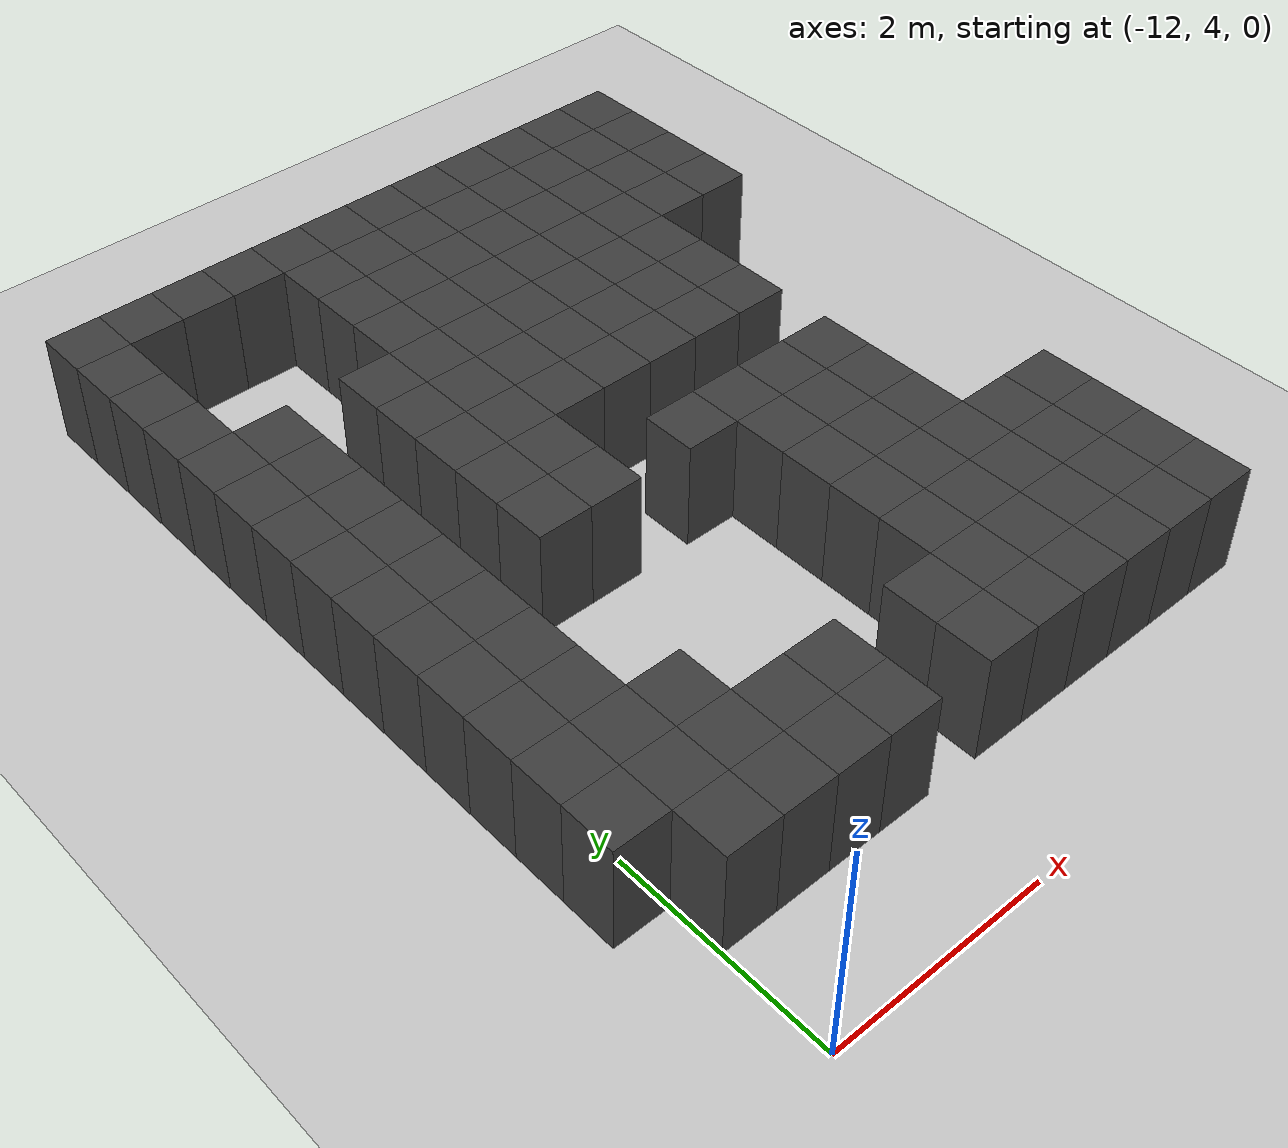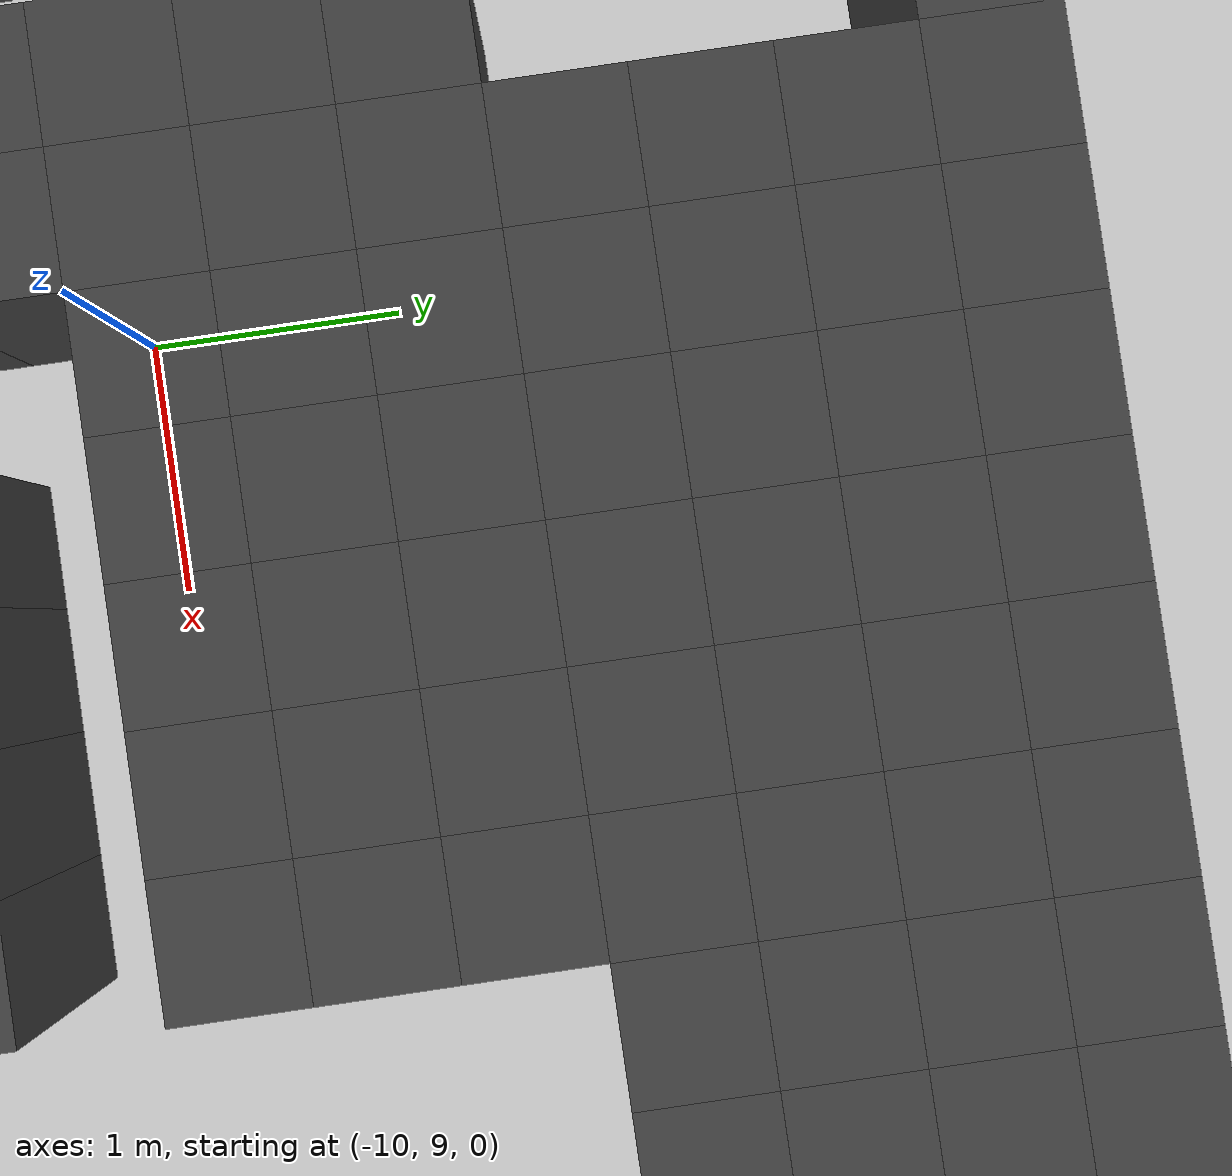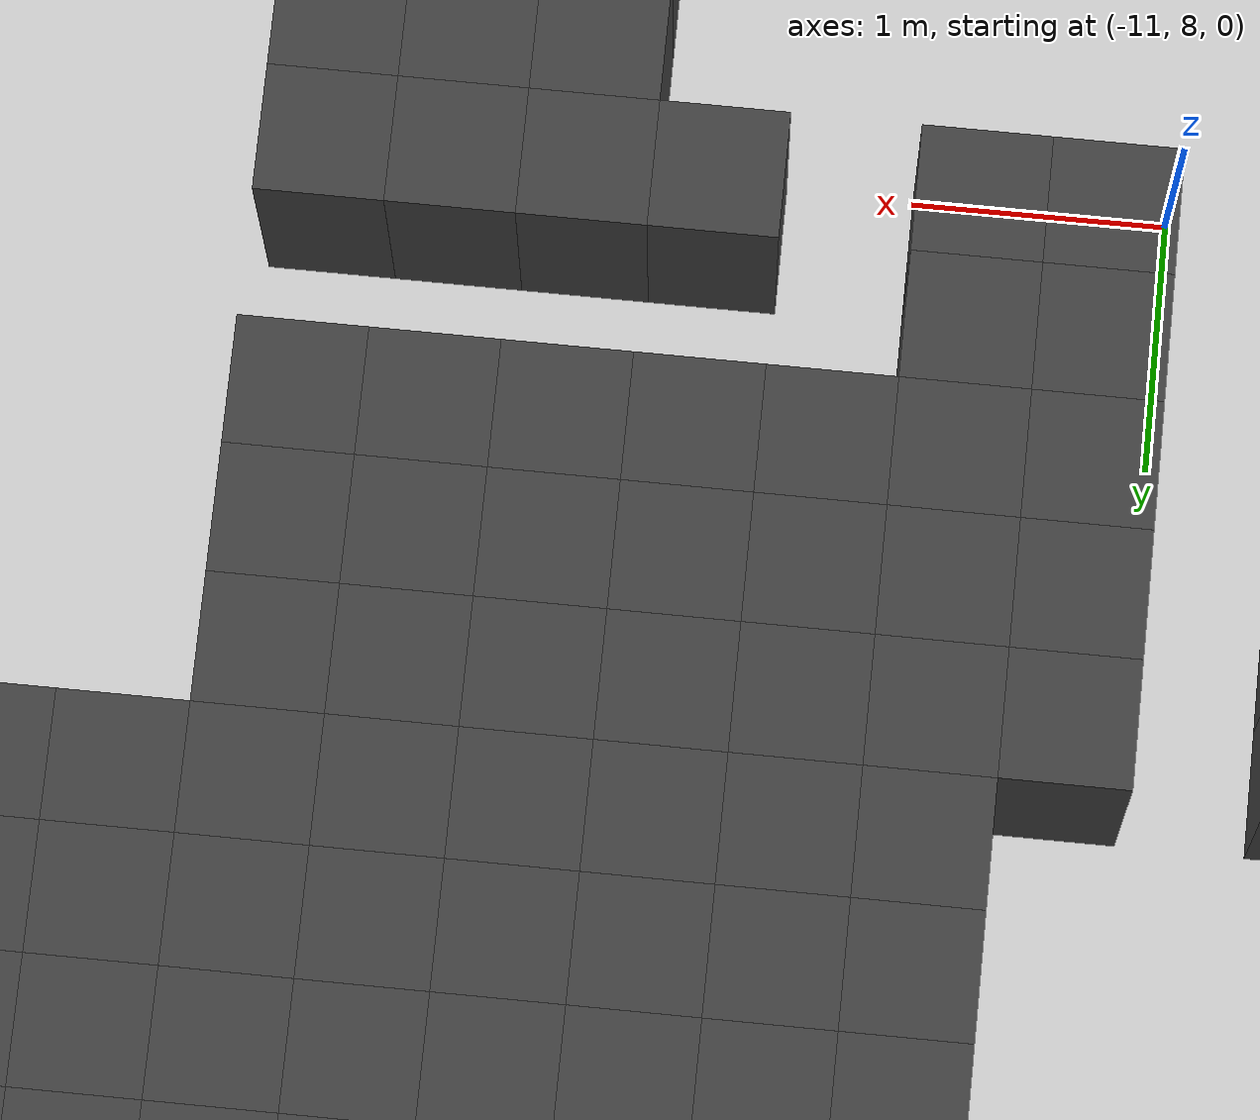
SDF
<sdf version="1.7">
 <world name="map_14802">
  <model name="ground_plane">
   <static>true</static>
   <link name="link">
    <collision name="collision">
     <geometry><plane><normal>0 0 1</normal><size>200 200</size></plane></geometry>
    </collision>
    <visual name="visual">
     <geometry><plane><normal>0 0 1</normal><size>200 200</size></plane></geometry>
     <material><ambient>0.8 0.8 0.8 1</ambient><diffuse>0.8 0.8 0.8 1</diffuse></material>
    </visual>
   </link>
  </model>
  <model name="maze_environment">
   <static>true</static>
   <link name="wall_0">
    <pose>-12.250 12.250 0.500 0 0 0</pose>
    <collision name="col"><geometry><box><size>0.5 0.5 1.0</size></box></geometry></collision>
    <visual name="vis">
     <geometry><box><size>0.5 0.5 1.0</size></box></geometry>
     <material><ambient>0.15 0.15 0.15 1</ambient><diffuse>0.25 0.25 0.25 1</diffuse></material>
    </visual>
   </link>
   <link name="wall_1">
    <pose>-11.750 12.250 0.500 0 0 0</pose>
    <collision name="col"><geometry><box><size>0.5 0.5 1.0</size></box></geometry></collision>
    <visual name="vis">
     <geometry><box><size>0.5 0.5 1.0</size></box></geometry>
     <material><ambient>0.15 0.15 0.15 1</ambient><diffuse>0.25 0.25 0.25 1</diffuse></material>
    </visual>
   </link>
   <link name="wall_2">
    <pose>-11.250 12.250 0.500 0 0 0</pose>
    <collision name="col"><geometry><box><size>0.5 0.5 1.0</size></box></geometry></collision>
    <visual name="vis">
     <geometry><box><size>0.5 0.5 1.0</size></box></geometry>
     <material><ambient>0.15 0.15 0.15 1</ambient><diffuse>0.25 0.25 0.25 1</diffuse></material>
    </visual>
   </link>
   <link name="wall_3">
    <pose>-10.750 12.250 0.500 0 0 0</pose>
    <collision name="col"><geometry><box><size>0.5 0.5 1.0</size></box></geometry></collision>
    <visual name="vis">
     <geometry><box><size>0.5 0.5 1.0</size></box></geometry>
     <material><ambient>0.15 0.15 0.15 1</ambient><diffuse>0.25 0.25 0.25 1</diffuse></material>
    </visual>
   </link>
   <link name="wall_4">
    <pose>-10.250 12.250 0.500 0 0 0</pose>
    <collision name="col"><geometry><box><size>0.5 0.5 1.0</size></box></geometry></collision>
    <visual name="vis">
     <geometry><box><size>0.5 0.5 1.0</size></box></geometry>
     <material><ambient>0.15 0.15 0.15 1</ambient><diffuse>0.25 0.25 0.25 1</diffuse></material>
    </visual>
   </link>
   <link name="wall_5">
    <pose>-9.750 12.250 0.500 0 0 0</pose>
    <collision name="col"><geometry><box><size>0.5 0.5 1.0</size></box></geometry></collision>
    <visual name="vis">
     <geometry><box><size>0.5 0.5 1.0</size></box></geometry>
     <material><ambient>0.15 0.15 0.15 1</ambient><diffuse>0.25 0.25 0.25 1</diffuse></material>
    </visual>
   </link>
   <link name="wall_6">
    <pose>-9.250 12.250 0.500 0 0 0</pose>
    <collision name="col"><geometry><box><size>0.5 0.5 1.0</size></box></geometry></collision>
    <visual name="vis">
     <geometry><box><size>0.5 0.5 1.0</size></box></geometry>
     <material><ambient>0.15 0.15 0.15 1</ambient><diffuse>0.25 0.25 0.25 1</diffuse></material>
    </visual>
   </link>
   <link name="wall_7">
    <pose>-8.750 12.250 0.500 0 0 0</pose>
    <collision name="col"><geometry><box><size>0.5 0.5 1.0</size></box></geometry></collision>
    <visual name="vis">
     <geometry><box><size>0.5 0.5 1.0</size></box></geometry>
     <material><ambient>0.15 0.15 0.15 1</ambient><diffuse>0.25 0.25 0.25 1</diffuse></material>
    </visual>
   </link>
   <link name="wall_8">
    <pose>-8.250 12.250 0.500 0 0 0</pose>
    <collision name="col"><geometry><box><size>0.5 0.5 1.0</size></box></geometry></collision>
    <visual name="vis">
     <geometry><box><size>0.5 0.5 1.0</size></box></geometry>
     <material><ambient>0.15 0.15 0.15 1</ambient><diffuse>0.25 0.25 0.25 1</diffuse></material>
    </visual>
   </link>
   <link name="wall_9">
    <pose>-7.750 12.250 0.500 0 0 0</pose>
    <collision name="col"><geometry><box><size>0.5 0.5 1.0</size></box></geometry></collision>
    <visual name="vis">
     <geometry><box><size>0.5 0.5 1.0</size></box></geometry>
     <material><ambient>0.15 0.15 0.15 1</ambient><diffuse>0.25 0.25 0.25 1</diffuse></material>
    </visual>
   </link>
   <link name="wall_10">
    <pose>-7.250 12.250 0.500 0 0 0</pose>
    <collision name="col"><geometry><box><size>0.5 0.5 1.0</size></box></geometry></collision>
    <visual name="vis">
     <geometry><box><size>0.5 0.5 1.0</size></box></geometry>
     <material><ambient>0.15 0.15 0.15 1</ambient><diffuse>0.25 0.25 0.25 1</diffuse></material>
    </visual>
   </link>
   <link name="wall_11">
    <pose>-6.750 12.250 0.500 0 0 0</pose>
    <collision name="col"><geometry><box><size>0.5 0.5 1.0</size></box></geometry></collision>
    <visual name="vis">
     <geometry><box><size>0.5 0.5 1.0</size></box></geometry>
     <material><ambient>0.15 0.15 0.15 1</ambient><diffuse>0.25 0.25 0.25 1</diffuse></material>
    </visual>
   </link>
   <link name="wall_50">
    <pose>-12.250 11.750 0.500 0 0 0</pose>
    <collision name="col"><geometry><box><size>0.5 0.5 1.0</size></box></geometry></collision>
    <visual name="vis">
     <geometry><box><size>0.5 0.5 1.0</size></box></geometry>
     <material><ambient>0.15 0.15 0.15 1</ambient><diffuse>0.25 0.25 0.25 1</diffuse></material>
    </visual>
   </link>
   <link name="wall_51">
    <pose>-10.250 11.750 0.500 0 0 0</pose>
    <collision name="col"><geometry><box><size>0.5 0.5 1.0</size></box></geometry></collision>
    <visual name="vis">
     <geometry><box><size>0.5 0.5 1.0</size></box></geometry>
     <material><ambient>0.15 0.15 0.15 1</ambient><diffuse>0.25 0.25 0.25 1</diffuse></material>
    </visual>
   </link>
   <link name="wall_52">
    <pose>-9.750 11.750 0.500 0 0 0</pose>
    <collision name="col"><geometry><box><size>0.5 0.5 1.0</size></box></geometry></collision>
    <visual name="vis">
     <geometry><box><size>0.5 0.5 1.0</size></box></geometry>
     <material><ambient>0.15 0.15 0.15 1</ambient><diffuse>0.25 0.25 0.25 1</diffuse></material>
    </visual>
   </link>
   <link name="wall_53">
    <pose>-9.250 11.750 0.500 0 0 0</pose>
    <collision name="col"><geometry><box><size>0.5 0.5 1.0</size></box></geometry></collision>
    <visual name="vis">
     <geometry><box><size>0.5 0.5 1.0</size></box></geometry>
     <material><ambient>0.15 0.15 0.15 1</ambient><diffuse>0.25 0.25 0.25 1</diffuse></material>
    </visual>
   </link>
   <link name="wall_54">
    <pose>-8.750 11.750 0.500 0 0 0</pose>
    <collision name="col"><geometry><box><size>0.5 0.5 1.0</size></box></geometry></collision>
    <visual name="vis">
     <geometry><box><size>0.5 0.5 1.0</size></box></geometry>
     <material><ambient>0.15 0.15 0.15 1</ambient><diffuse>0.25 0.25 0.25 1</diffuse></material>
    </visual>
   </link>
   <link name="wall_55">
    <pose>-8.250 11.750 0.500 0 0 0</pose>
    <collision name="col"><geometry><box><size>0.5 0.5 1.0</size></box></geometry></collision>
    <visual name="vis">
     <geometry><box><size>0.5 0.5 1.0</size></box></geometry>
     <material><ambient>0.15 0.15 0.15 1</ambient><diffuse>0.25 0.25 0.25 1</diffuse></material>
    </visual>
   </link>
   <link name="wall_56">
    <pose>-7.750 11.750 0.500 0 0 0</pose>
    <collision name="col"><geometry><box><size>0.5 0.5 1.0</size></box></geometry></collision>
    <visual name="vis">
     <geometry><box><size>0.5 0.5 1.0</size></box></geometry>
     <material><ambient>0.15 0.15 0.15 1</ambient><diffuse>0.25 0.25 0.25 1</diffuse></material>
    </visual>
   </link>
   <link name="wall_57">
    <pose>-7.250 11.750 0.500 0 0 0</pose>
    <collision name="col"><geometry><box><size>0.5 0.5 1.0</size></box></geometry></collision>
    <visual name="vis">
     <geometry><box><size>0.5 0.5 1.0</size></box></geometry>
     <material><ambient>0.15 0.15 0.15 1</ambient><diffuse>0.25 0.25 0.25 1</diffuse></material>
    </visual>
   </link>
   <link name="wall_58">
    <pose>-6.750 11.750 0.500 0 0 0</pose>
    <collision name="col"><geometry><box><size>0.5 0.5 1.0</size></box></geometry></collision>
    <visual name="vis">
     <geometry><box><size>0.5 0.5 1.0</size></box></geometry>
     <material><ambient>0.15 0.15 0.15 1</ambient><diffuse>0.25 0.25 0.25 1</diffuse></material>
    </visual>
   </link>
   <link name="wall_97">
    <pose>-12.250 11.250 0.500 0 0 0</pose>
    <collision name="col"><geometry><box><size>0.5 0.5 1.0</size></box></geometry></collision>
    <visual name="vis">
     <geometry><box><size>0.5 0.5 1.0</size></box></geometry>
     <material><ambient>0.15 0.15 0.15 1</ambient><diffuse>0.25 0.25 0.25 1</diffuse></material>
    </visual>
   </link>
   <link name="wall_98">
    <pose>-10.250 11.250 0.500 0 0 0</pose>
    <collision name="col"><geometry><box><size>0.5 0.5 1.0</size></box></geometry></collision>
    <visual name="vis">
     <geometry><box><size>0.5 0.5 1.0</size></box></geometry>
     <material><ambient>0.15 0.15 0.15 1</ambient><diffuse>0.25 0.25 0.25 1</diffuse></material>
    </visual>
   </link>
   <link name="wall_99">
    <pose>-9.750 11.250 0.500 0 0 0</pose>
    <collision name="col"><geometry><box><size>0.5 0.5 1.0</size></box></geometry></collision>
    <visual name="vis">
     <geometry><box><size>0.5 0.5 1.0</size></box></geometry>
     <material><ambient>0.15 0.15 0.15 1</ambient><diffuse>0.25 0.25 0.25 1</diffuse></material>
    </visual>
   </link>
   <link name="wall_100">
    <pose>-9.250 11.250 0.500 0 0 0</pose>
    <collision name="col"><geometry><box><size>0.5 0.5 1.0</size></box></geometry></collision>
    <visual name="vis">
     <geometry><box><size>0.5 0.5 1.0</size></box></geometry>
     <material><ambient>0.15 0.15 0.15 1</ambient><diffuse>0.25 0.25 0.25 1</diffuse></material>
    </visual>
   </link>
   <link name="wall_101">
    <pose>-8.750 11.250 0.500 0 0 0</pose>
    <collision name="col"><geometry><box><size>0.5 0.5 1.0</size></box></geometry></collision>
    <visual name="vis">
     <geometry><box><size>0.5 0.5 1.0</size></box></geometry>
     <material><ambient>0.15 0.15 0.15 1</ambient><diffuse>0.25 0.25 0.25 1</diffuse></material>
    </visual>
   </link>
   <link name="wall_102">
    <pose>-8.250 11.250 0.500 0 0 0</pose>
    <collision name="col"><geometry><box><size>0.5 0.5 1.0</size></box></geometry></collision>
    <visual name="vis">
     <geometry><box><size>0.5 0.5 1.0</size></box></geometry>
     <material><ambient>0.15 0.15 0.15 1</ambient><diffuse>0.25 0.25 0.25 1</diffuse></material>
    </visual>
   </link>
   <link name="wall_103">
    <pose>-7.750 11.250 0.500 0 0 0</pose>
    <collision name="col"><geometry><box><size>0.5 0.5 1.0</size></box></geometry></collision>
    <visual name="vis">
     <geometry><box><size>0.5 0.5 1.0</size></box></geometry>
     <material><ambient>0.15 0.15 0.15 1</ambient><diffuse>0.25 0.25 0.25 1</diffuse></material>
    </visual>
   </link>
   <link name="wall_104">
    <pose>-7.250 11.250 0.500 0 0 0</pose>
    <collision name="col"><geometry><box><size>0.5 0.5 1.0</size></box></geometry></collision>
    <visual name="vis">
     <geometry><box><size>0.5 0.5 1.0</size></box></geometry>
     <material><ambient>0.15 0.15 0.15 1</ambient><diffuse>0.25 0.25 0.25 1</diffuse></material>
    </visual>
   </link>
   <link name="wall_105">
    <pose>-6.750 11.250 0.500 0 0 0</pose>
    <collision name="col"><geometry><box><size>0.5 0.5 1.0</size></box></geometry></collision>
    <visual name="vis">
     <geometry><box><size>0.5 0.5 1.0</size></box></geometry>
     <material><ambient>0.15 0.15 0.15 1</ambient><diffuse>0.25 0.25 0.25 1</diffuse></material>
    </visual>
   </link>
   <link name="wall_139">
    <pose>-12.250 10.750 0.500 0 0 0</pose>
    <collision name="col"><geometry><box><size>0.5 0.5 1.0</size></box></geometry></collision>
    <visual name="vis">
     <geometry><box><size>0.5 0.5 1.0</size></box></geometry>
     <material><ambient>0.15 0.15 0.15 1</ambient><diffuse>0.25 0.25 0.25 1</diffuse></material>
    </visual>
   </link>
   <link name="wall_140">
    <pose>-10.250 10.750 0.500 0 0 0</pose>
    <collision name="col"><geometry><box><size>0.5 0.5 1.0</size></box></geometry></collision>
    <visual name="vis">
     <geometry><box><size>0.5 0.5 1.0</size></box></geometry>
     <material><ambient>0.15 0.15 0.15 1</ambient><diffuse>0.25 0.25 0.25 1</diffuse></material>
    </visual>
   </link>
   <link name="wall_141">
    <pose>-9.750 10.750 0.500 0 0 0</pose>
    <collision name="col"><geometry><box><size>0.5 0.5 1.0</size></box></geometry></collision>
    <visual name="vis">
     <geometry><box><size>0.5 0.5 1.0</size></box></geometry>
     <material><ambient>0.15 0.15 0.15 1</ambient><diffuse>0.25 0.25 0.25 1</diffuse></material>
    </visual>
   </link>
   <link name="wall_142">
    <pose>-9.250 10.750 0.500 0 0 0</pose>
    <collision name="col"><geometry><box><size>0.5 0.5 1.0</size></box></geometry></collision>
    <visual name="vis">
     <geometry><box><size>0.5 0.5 1.0</size></box></geometry>
     <material><ambient>0.15 0.15 0.15 1</ambient><diffuse>0.25 0.25 0.25 1</diffuse></material>
    </visual>
   </link>
   <link name="wall_143">
    <pose>-8.750 10.750 0.500 0 0 0</pose>
    <collision name="col"><geometry><box><size>0.5 0.5 1.0</size></box></geometry></collision>
    <visual name="vis">
     <geometry><box><size>0.5 0.5 1.0</size></box></geometry>
     <material><ambient>0.15 0.15 0.15 1</ambient><diffuse>0.25 0.25 0.25 1</diffuse></material>
    </visual>
   </link>
   <link name="wall_144">
    <pose>-8.250 10.750 0.500 0 0 0</pose>
    <collision name="col"><geometry><box><size>0.5 0.5 1.0</size></box></geometry></collision>
    <visual name="vis">
     <geometry><box><size>0.5 0.5 1.0</size></box></geometry>
     <material><ambient>0.15 0.15 0.15 1</ambient><diffuse>0.25 0.25 0.25 1</diffuse></material>
    </visual>
   </link>
   <link name="wall_145">
    <pose>-7.750 10.750 0.500 0 0 0</pose>
    <collision name="col"><geometry><box><size>0.5 0.5 1.0</size></box></geometry></collision>
    <visual name="vis">
     <geometry><box><size>0.5 0.5 1.0</size></box></geometry>
     <material><ambient>0.15 0.15 0.15 1</ambient><diffuse>0.25 0.25 0.25 1</diffuse></material>
    </visual>
   </link>
   <link name="wall_146">
    <pose>-7.250 10.750 0.500 0 0 0</pose>
    <collision name="col"><geometry><box><size>0.5 0.5 1.0</size></box></geometry></collision>
    <visual name="vis">
     <geometry><box><size>0.5 0.5 1.0</size></box></geometry>
     <material><ambient>0.15 0.15 0.15 1</ambient><diffuse>0.25 0.25 0.25 1</diffuse></material>
    </visual>
   </link>
   <link name="wall_147">
    <pose>-6.750 10.750 0.500 0 0 0</pose>
    <collision name="col"><geometry><box><size>0.5 0.5 1.0</size></box></geometry></collision>
    <visual name="vis">
     <geometry><box><size>0.5 0.5 1.0</size></box></geometry>
     <material><ambient>0.15 0.15 0.15 1</ambient><diffuse>0.25 0.25 0.25 1</diffuse></material>
    </visual>
   </link>
   <link name="wall_181">
    <pose>-12.250 10.250 0.500 0 0 0</pose>
    <collision name="col"><geometry><box><size>0.5 0.5 1.0</size></box></geometry></collision>
    <visual name="vis">
     <geometry><box><size>0.5 0.5 1.0</size></box></geometry>
     <material><ambient>0.15 0.15 0.15 1</ambient><diffuse>0.25 0.25 0.25 1</diffuse></material>
    </visual>
   </link>
   <link name="wall_182">
    <pose>-11.750 10.250 0.500 0 0 0</pose>
    <collision name="col"><geometry><box><size>0.5 0.5 1.0</size></box></geometry></collision>
    <visual name="vis">
     <geometry><box><size>0.5 0.5 1.0</size></box></geometry>
     <material><ambient>0.15 0.15 0.15 1</ambient><diffuse>0.25 0.25 0.25 1</diffuse></material>
    </visual>
   </link>
   <link name="wall_183">
    <pose>-10.750 10.250 0.500 0 0 0</pose>
    <collision name="col"><geometry><box><size>0.5 0.5 1.0</size></box></geometry></collision>
    <visual name="vis">
     <geometry><box><size>0.5 0.5 1.0</size></box></geometry>
     <material><ambient>0.15 0.15 0.15 1</ambient><diffuse>0.25 0.25 0.25 1</diffuse></material>
    </visual>
   </link>
   <link name="wall_184">
    <pose>-10.250 10.250 0.500 0 0 0</pose>
    <collision name="col"><geometry><box><size>0.5 0.5 1.0</size></box></geometry></collision>
    <visual name="vis">
     <geometry><box><size>0.5 0.5 1.0</size></box></geometry>
     <material><ambient>0.15 0.15 0.15 1</ambient><diffuse>0.25 0.25 0.25 1</diffuse></material>
    </visual>
   </link>
   <link name="wall_185">
    <pose>-9.750 10.250 0.500 0 0 0</pose>
    <collision name="col"><geometry><box><size>0.5 0.5 1.0</size></box></geometry></collision>
    <visual name="vis">
     <geometry><box><size>0.5 0.5 1.0</size></box></geometry>
     <material><ambient>0.15 0.15 0.15 1</ambient><diffuse>0.25 0.25 0.25 1</diffuse></material>
    </visual>
   </link>
   <link name="wall_186">
    <pose>-9.250 10.250 0.500 0 0 0</pose>
    <collision name="col"><geometry><box><size>0.5 0.5 1.0</size></box></geometry></collision>
    <visual name="vis">
     <geometry><box><size>0.5 0.5 1.0</size></box></geometry>
     <material><ambient>0.15 0.15 0.15 1</ambient><diffuse>0.25 0.25 0.25 1</diffuse></material>
    </visual>
   </link>
   <link name="wall_187">
    <pose>-8.750 10.250 0.500 0 0 0</pose>
    <collision name="col"><geometry><box><size>0.5 0.5 1.0</size></box></geometry></collision>
    <visual name="vis">
     <geometry><box><size>0.5 0.5 1.0</size></box></geometry>
     <material><ambient>0.15 0.15 0.15 1</ambient><diffuse>0.25 0.25 0.25 1</diffuse></material>
    </visual>
   </link>
   <link name="wall_188">
    <pose>-8.250 10.250 0.500 0 0 0</pose>
    <collision name="col"><geometry><box><size>0.5 0.5 1.0</size></box></geometry></collision>
    <visual name="vis">
     <geometry><box><size>0.5 0.5 1.0</size></box></geometry>
     <material><ambient>0.15 0.15 0.15 1</ambient><diffuse>0.25 0.25 0.25 1</diffuse></material>
    </visual>
   </link>
   <link name="wall_189">
    <pose>-7.750 10.250 0.500 0 0 0</pose>
    <collision name="col"><geometry><box><size>0.5 0.5 1.0</size></box></geometry></collision>
    <visual name="vis">
     <geometry><box><size>0.5 0.5 1.0</size></box></geometry>
     <material><ambient>0.15 0.15 0.15 1</ambient><diffuse>0.25 0.25 0.25 1</diffuse></material>
    </visual>
   </link>
   <link name="wall_217">
    <pose>-12.250 9.750 0.500 0 0 0</pose>
    <collision name="col"><geometry><box><size>0.5 0.5 1.0</size></box></geometry></collision>
    <visual name="vis">
     <geometry><box><size>0.5 0.5 1.0</size></box></geometry>
     <material><ambient>0.15 0.15 0.15 1</ambient><diffuse>0.25 0.25 0.25 1</diffuse></material>
    </visual>
   </link>
   <link name="wall_218">
    <pose>-11.750 9.750 0.500 0 0 0</pose>
    <collision name="col"><geometry><box><size>0.5 0.5 1.0</size></box></geometry></collision>
    <visual name="vis">
     <geometry><box><size>0.5 0.5 1.0</size></box></geometry>
     <material><ambient>0.15 0.15 0.15 1</ambient><diffuse>0.25 0.25 0.25 1</diffuse></material>
    </visual>
   </link>
   <link name="wall_219">
    <pose>-10.750 9.750 0.500 0 0 0</pose>
    <collision name="col"><geometry><box><size>0.5 0.5 1.0</size></box></geometry></collision>
    <visual name="vis">
     <geometry><box><size>0.5 0.5 1.0</size></box></geometry>
     <material><ambient>0.15 0.15 0.15 1</ambient><diffuse>0.25 0.25 0.25 1</diffuse></material>
    </visual>
   </link>
   <link name="wall_220">
    <pose>-10.250 9.750 0.500 0 0 0</pose>
    <collision name="col"><geometry><box><size>0.5 0.5 1.0</size></box></geometry></collision>
    <visual name="vis">
     <geometry><box><size>0.5 0.5 1.0</size></box></geometry>
     <material><ambient>0.15 0.15 0.15 1</ambient><diffuse>0.25 0.25 0.25 1</diffuse></material>
    </visual>
   </link>
   <link name="wall_221">
    <pose>-9.750 9.750 0.500 0 0 0</pose>
    <collision name="col"><geometry><box><size>0.5 0.5 1.0</size></box></geometry></collision>
    <visual name="vis">
     <geometry><box><size>0.5 0.5 1.0</size></box></geometry>
     <material><ambient>0.15 0.15 0.15 1</ambient><diffuse>0.25 0.25 0.25 1</diffuse></material>
    </visual>
   </link>
   <link name="wall_222">
    <pose>-9.250 9.750 0.500 0 0 0</pose>
    <collision name="col"><geometry><box><size>0.5 0.5 1.0</size></box></geometry></collision>
    <visual name="vis">
     <geometry><box><size>0.5 0.5 1.0</size></box></geometry>
     <material><ambient>0.15 0.15 0.15 1</ambient><diffuse>0.25 0.25 0.25 1</diffuse></material>
    </visual>
   </link>
   <link name="wall_223">
    <pose>-8.750 9.750 0.500 0 0 0</pose>
    <collision name="col"><geometry><box><size>0.5 0.5 1.0</size></box></geometry></collision>
    <visual name="vis">
     <geometry><box><size>0.5 0.5 1.0</size></box></geometry>
     <material><ambient>0.15 0.15 0.15 1</ambient><diffuse>0.25 0.25 0.25 1</diffuse></material>
    </visual>
   </link>
   <link name="wall_224">
    <pose>-8.250 9.750 0.500 0 0 0</pose>
    <collision name="col"><geometry><box><size>0.5 0.5 1.0</size></box></geometry></collision>
    <visual name="vis">
     <geometry><box><size>0.5 0.5 1.0</size></box></geometry>
     <material><ambient>0.15 0.15 0.15 1</ambient><diffuse>0.25 0.25 0.25 1</diffuse></material>
    </visual>
   </link>
   <link name="wall_225">
    <pose>-7.750 9.750 0.500 0 0 0</pose>
    <collision name="col"><geometry><box><size>0.5 0.5 1.0</size></box></geometry></collision>
    <visual name="vis">
     <geometry><box><size>0.5 0.5 1.0</size></box></geometry>
     <material><ambient>0.15 0.15 0.15 1</ambient><diffuse>0.25 0.25 0.25 1</diffuse></material>
    </visual>
   </link>
   <link name="wall_246">
    <pose>-12.250 9.250 0.500 0 0 0</pose>
    <collision name="col"><geometry><box><size>0.5 0.5 1.0</size></box></geometry></collision>
    <visual name="vis">
     <geometry><box><size>0.5 0.5 1.0</size></box></geometry>
     <material><ambient>0.15 0.15 0.15 1</ambient><diffuse>0.25 0.25 0.25 1</diffuse></material>
    </visual>
   </link>
   <link name="wall_247">
    <pose>-11.750 9.250 0.500 0 0 0</pose>
    <collision name="col"><geometry><box><size>0.5 0.5 1.0</size></box></geometry></collision>
    <visual name="vis">
     <geometry><box><size>0.5 0.5 1.0</size></box></geometry>
     <material><ambient>0.15 0.15 0.15 1</ambient><diffuse>0.25 0.25 0.25 1</diffuse></material>
    </visual>
   </link>
   <link name="wall_248">
    <pose>-10.750 9.250 0.500 0 0 0</pose>
    <collision name="col"><geometry><box><size>0.5 0.5 1.0</size></box></geometry></collision>
    <visual name="vis">
     <geometry><box><size>0.5 0.5 1.0</size></box></geometry>
     <material><ambient>0.15 0.15 0.15 1</ambient><diffuse>0.25 0.25 0.25 1</diffuse></material>
    </visual>
   </link>
   <link name="wall_249">
    <pose>-10.250 9.250 0.500 0 0 0</pose>
    <collision name="col"><geometry><box><size>0.5 0.5 1.0</size></box></geometry></collision>
    <visual name="vis">
     <geometry><box><size>0.5 0.5 1.0</size></box></geometry>
     <material><ambient>0.15 0.15 0.15 1</ambient><diffuse>0.25 0.25 0.25 1</diffuse></material>
    </visual>
   </link>
   <link name="wall_250">
    <pose>-9.750 9.250 0.500 0 0 0</pose>
    <collision name="col"><geometry><box><size>0.5 0.5 1.0</size></box></geometry></collision>
    <visual name="vis">
     <geometry><box><size>0.5 0.5 1.0</size></box></geometry>
     <material><ambient>0.15 0.15 0.15 1</ambient><diffuse>0.25 0.25 0.25 1</diffuse></material>
    </visual>
   </link>
   <link name="wall_251">
    <pose>-9.250 9.250 0.500 0 0 0</pose>
    <collision name="col"><geometry><box><size>0.5 0.5 1.0</size></box></geometry></collision>
    <visual name="vis">
     <geometry><box><size>0.5 0.5 1.0</size></box></geometry>
     <material><ambient>0.15 0.15 0.15 1</ambient><diffuse>0.25 0.25 0.25 1</diffuse></material>
    </visual>
   </link>
   <link name="wall_252">
    <pose>-8.750 9.250 0.500 0 0 0</pose>
    <collision name="col"><geometry><box><size>0.5 0.5 1.0</size></box></geometry></collision>
    <visual name="vis">
     <geometry><box><size>0.5 0.5 1.0</size></box></geometry>
     <material><ambient>0.15 0.15 0.15 1</ambient><diffuse>0.25 0.25 0.25 1</diffuse></material>
    </visual>
   </link>
   <link name="wall_253">
    <pose>-8.250 9.250 0.500 0 0 0</pose>
    <collision name="col"><geometry><box><size>0.5 0.5 1.0</size></box></geometry></collision>
    <visual name="vis">
     <geometry><box><size>0.5 0.5 1.0</size></box></geometry>
     <material><ambient>0.15 0.15 0.15 1</ambient><diffuse>0.25 0.25 0.25 1</diffuse></material>
    </visual>
   </link>
   <link name="wall_254">
    <pose>-7.750 9.250 0.500 0 0 0</pose>
    <collision name="col"><geometry><box><size>0.5 0.5 1.0</size></box></geometry></collision>
    <visual name="vis">
     <geometry><box><size>0.5 0.5 1.0</size></box></geometry>
     <material><ambient>0.15 0.15 0.15 1</ambient><diffuse>0.25 0.25 0.25 1</diffuse></material>
    </visual>
   </link>
   <link name="wall_277">
    <pose>-12.250 8.750 0.500 0 0 0</pose>
    <collision name="col"><geometry><box><size>0.5 0.5 1.0</size></box></geometry></collision>
    <visual name="vis">
     <geometry><box><size>0.5 0.5 1.0</size></box></geometry>
     <material><ambient>0.15 0.15 0.15 1</ambient><diffuse>0.25 0.25 0.25 1</diffuse></material>
    </visual>
   </link>
   <link name="wall_278">
    <pose>-11.750 8.750 0.500 0 0 0</pose>
    <collision name="col"><geometry><box><size>0.5 0.5 1.0</size></box></geometry></collision>
    <visual name="vis">
     <geometry><box><size>0.5 0.5 1.0</size></box></geometry>
     <material><ambient>0.15 0.15 0.15 1</ambient><diffuse>0.25 0.25 0.25 1</diffuse></material>
    </visual>
   </link>
   <link name="wall_279">
    <pose>-10.750 8.750 0.500 0 0 0</pose>
    <collision name="col"><geometry><box><size>0.5 0.5 1.0</size></box></geometry></collision>
    <visual name="vis">
     <geometry><box><size>0.5 0.5 1.0</size></box></geometry>
     <material><ambient>0.15 0.15 0.15 1</ambient><diffuse>0.25 0.25 0.25 1</diffuse></material>
    </visual>
   </link>
   <link name="wall_280">
    <pose>-10.250 8.750 0.500 0 0 0</pose>
    <collision name="col"><geometry><box><size>0.5 0.5 1.0</size></box></geometry></collision>
    <visual name="vis">
     <geometry><box><size>0.5 0.5 1.0</size></box></geometry>
     <material><ambient>0.15 0.15 0.15 1</ambient><diffuse>0.25 0.25 0.25 1</diffuse></material>
    </visual>
   </link>
   <link name="wall_303">
    <pose>-12.250 8.250 0.500 0 0 0</pose>
    <collision name="col"><geometry><box><size>0.5 0.5 1.0</size></box></geometry></collision>
    <visual name="vis">
     <geometry><box><size>0.5 0.5 1.0</size></box></geometry>
     <material><ambient>0.15 0.15 0.15 1</ambient><diffuse>0.25 0.25 0.25 1</diffuse></material>
    </visual>
   </link>
   <link name="wall_304">
    <pose>-11.750 8.250 0.500 0 0 0</pose>
    <collision name="col"><geometry><box><size>0.5 0.5 1.0</size></box></geometry></collision>
    <visual name="vis">
     <geometry><box><size>0.5 0.5 1.0</size></box></geometry>
     <material><ambient>0.15 0.15 0.15 1</ambient><diffuse>0.25 0.25 0.25 1</diffuse></material>
    </visual>
   </link>
   <link name="wall_305">
    <pose>-10.750 8.250 0.500 0 0 0</pose>
    <collision name="col"><geometry><box><size>0.5 0.5 1.0</size></box></geometry></collision>
    <visual name="vis">
     <geometry><box><size>0.5 0.5 1.0</size></box></geometry>
     <material><ambient>0.15 0.15 0.15 1</ambient><diffuse>0.25 0.25 0.25 1</diffuse></material>
    </visual>
   </link>
   <link name="wall_306">
    <pose>-10.250 8.250 0.500 0 0 0</pose>
    <collision name="col"><geometry><box><size>0.5 0.5 1.0</size></box></geometry></collision>
    <visual name="vis">
     <geometry><box><size>0.5 0.5 1.0</size></box></geometry>
     <material><ambient>0.15 0.15 0.15 1</ambient><diffuse>0.25 0.25 0.25 1</diffuse></material>
    </visual>
   </link>
   <link name="wall_307">
    <pose>-9.250 8.250 0.500 0 0 0</pose>
    <collision name="col"><geometry><box><size>0.5 0.5 1.0</size></box></geometry></collision>
    <visual name="vis">
     <geometry><box><size>0.5 0.5 1.0</size></box></geometry>
     <material><ambient>0.15 0.15 0.15 1</ambient><diffuse>0.25 0.25 0.25 1</diffuse></material>
    </visual>
   </link>
   <link name="wall_308">
    <pose>-8.750 8.250 0.500 0 0 0</pose>
    <collision name="col"><geometry><box><size>0.5 0.5 1.0</size></box></geometry></collision>
    <visual name="vis">
     <geometry><box><size>0.5 0.5 1.0</size></box></geometry>
     <material><ambient>0.15 0.15 0.15 1</ambient><diffuse>0.25 0.25 0.25 1</diffuse></material>
    </visual>
   </link>
   <link name="wall_309">
    <pose>-8.250 8.250 0.500 0 0 0</pose>
    <collision name="col"><geometry><box><size>0.5 0.5 1.0</size></box></geometry></collision>
    <visual name="vis">
     <geometry><box><size>0.5 0.5 1.0</size></box></geometry>
     <material><ambient>0.15 0.15 0.15 1</ambient><diffuse>0.25 0.25 0.25 1</diffuse></material>
    </visual>
   </link>
   <link name="wall_310">
    <pose>-7.750 8.250 0.500 0 0 0</pose>
    <collision name="col"><geometry><box><size>0.5 0.5 1.0</size></box></geometry></collision>
    <visual name="vis">
     <geometry><box><size>0.5 0.5 1.0</size></box></geometry>
     <material><ambient>0.15 0.15 0.15 1</ambient><diffuse>0.25 0.25 0.25 1</diffuse></material>
    </visual>
   </link>
   <link name="wall_332">
    <pose>-12.250 7.750 0.500 0 0 0</pose>
    <collision name="col"><geometry><box><size>0.5 0.5 1.0</size></box></geometry></collision>
    <visual name="vis">
     <geometry><box><size>0.5 0.5 1.0</size></box></geometry>
     <material><ambient>0.15 0.15 0.15 1</ambient><diffuse>0.25 0.25 0.25 1</diffuse></material>
    </visual>
   </link>
   <link name="wall_333">
    <pose>-11.750 7.750 0.500 0 0 0</pose>
    <collision name="col"><geometry><box><size>0.5 0.5 1.0</size></box></geometry></collision>
    <visual name="vis">
     <geometry><box><size>0.5 0.5 1.0</size></box></geometry>
     <material><ambient>0.15 0.15 0.15 1</ambient><diffuse>0.25 0.25 0.25 1</diffuse></material>
    </visual>
   </link>
   <link name="wall_334">
    <pose>-8.750 7.750 0.500 0 0 0</pose>
    <collision name="col"><geometry><box><size>0.5 0.5 1.0</size></box></geometry></collision>
    <visual name="vis">
     <geometry><box><size>0.5 0.5 1.0</size></box></geometry>
     <material><ambient>0.15 0.15 0.15 1</ambient><diffuse>0.25 0.25 0.25 1</diffuse></material>
    </visual>
   </link>
   <link name="wall_335">
    <pose>-8.250 7.750 0.500 0 0 0</pose>
    <collision name="col"><geometry><box><size>0.5 0.5 1.0</size></box></geometry></collision>
    <visual name="vis">
     <geometry><box><size>0.5 0.5 1.0</size></box></geometry>
     <material><ambient>0.15 0.15 0.15 1</ambient><diffuse>0.25 0.25 0.25 1</diffuse></material>
    </visual>
   </link>
   <link name="wall_336">
    <pose>-7.750 7.750 0.500 0 0 0</pose>
    <collision name="col"><geometry><box><size>0.5 0.5 1.0</size></box></geometry></collision>
    <visual name="vis">
     <geometry><box><size>0.5 0.5 1.0</size></box></geometry>
     <material><ambient>0.15 0.15 0.15 1</ambient><diffuse>0.25 0.25 0.25 1</diffuse></material>
    </visual>
   </link>
   <link name="wall_356">
    <pose>-12.250 7.250 0.500 0 0 0</pose>
    <collision name="col"><geometry><box><size>0.5 0.5 1.0</size></box></geometry></collision>
    <visual name="vis">
     <geometry><box><size>0.5 0.5 1.0</size></box></geometry>
     <material><ambient>0.15 0.15 0.15 1</ambient><diffuse>0.25 0.25 0.25 1</diffuse></material>
    </visual>
   </link>
   <link name="wall_357">
    <pose>-11.750 7.250 0.500 0 0 0</pose>
    <collision name="col"><geometry><box><size>0.5 0.5 1.0</size></box></geometry></collision>
    <visual name="vis">
     <geometry><box><size>0.5 0.5 1.0</size></box></geometry>
     <material><ambient>0.15 0.15 0.15 1</ambient><diffuse>0.25 0.25 0.25 1</diffuse></material>
    </visual>
   </link>
   <link name="wall_358">
    <pose>-8.750 7.250 0.500 0 0 0</pose>
    <collision name="col"><geometry><box><size>0.5 0.5 1.0</size></box></geometry></collision>
    <visual name="vis">
     <geometry><box><size>0.5 0.5 1.0</size></box></geometry>
     <material><ambient>0.15 0.15 0.15 1</ambient><diffuse>0.25 0.25 0.25 1</diffuse></material>
    </visual>
   </link>
   <link name="wall_359">
    <pose>-8.250 7.250 0.500 0 0 0</pose>
    <collision name="col"><geometry><box><size>0.5 0.5 1.0</size></box></geometry></collision>
    <visual name="vis">
     <geometry><box><size>0.5 0.5 1.0</size></box></geometry>
     <material><ambient>0.15 0.15 0.15 1</ambient><diffuse>0.25 0.25 0.25 1</diffuse></material>
    </visual>
   </link>
   <link name="wall_360">
    <pose>-7.750 7.250 0.500 0 0 0</pose>
    <collision name="col"><geometry><box><size>0.5 0.5 1.0</size></box></geometry></collision>
    <visual name="vis">
     <geometry><box><size>0.5 0.5 1.0</size></box></geometry>
     <material><ambient>0.15 0.15 0.15 1</ambient><diffuse>0.25 0.25 0.25 1</diffuse></material>
    </visual>
   </link>
   <link name="wall_382">
    <pose>-12.250 6.750 0.500 0 0 0</pose>
    <collision name="col"><geometry><box><size>0.5 0.5 1.0</size></box></geometry></collision>
    <visual name="vis">
     <geometry><box><size>0.5 0.5 1.0</size></box></geometry>
     <material><ambient>0.15 0.15 0.15 1</ambient><diffuse>0.25 0.25 0.25 1</diffuse></material>
    </visual>
   </link>
   <link name="wall_383">
    <pose>-11.750 6.750 0.500 0 0 0</pose>
    <collision name="col"><geometry><box><size>0.5 0.5 1.0</size></box></geometry></collision>
    <visual name="vis">
     <geometry><box><size>0.5 0.5 1.0</size></box></geometry>
     <material><ambient>0.15 0.15 0.15 1</ambient><diffuse>0.25 0.25 0.25 1</diffuse></material>
    </visual>
   </link>
   <link name="wall_384">
    <pose>-8.750 6.750 0.500 0 0 0</pose>
    <collision name="col"><geometry><box><size>0.5 0.5 1.0</size></box></geometry></collision>
    <visual name="vis">
     <geometry><box><size>0.5 0.5 1.0</size></box></geometry>
     <material><ambient>0.15 0.15 0.15 1</ambient><diffuse>0.25 0.25 0.25 1</diffuse></material>
    </visual>
   </link>
   <link name="wall_385">
    <pose>-8.250 6.750 0.500 0 0 0</pose>
    <collision name="col"><geometry><box><size>0.5 0.5 1.0</size></box></geometry></collision>
    <visual name="vis">
     <geometry><box><size>0.5 0.5 1.0</size></box></geometry>
     <material><ambient>0.15 0.15 0.15 1</ambient><diffuse>0.25 0.25 0.25 1</diffuse></material>
    </visual>
   </link>
   <link name="wall_386">
    <pose>-7.750 6.750 0.500 0 0 0</pose>
    <collision name="col"><geometry><box><size>0.5 0.5 1.0</size></box></geometry></collision>
    <visual name="vis">
     <geometry><box><size>0.5 0.5 1.0</size></box></geometry>
     <material><ambient>0.15 0.15 0.15 1</ambient><diffuse>0.25 0.25 0.25 1</diffuse></material>
    </visual>
   </link>
   <link name="wall_387">
    <pose>-7.250 6.750 0.500 0 0 0</pose>
    <collision name="col"><geometry><box><size>0.5 0.5 1.0</size></box></geometry></collision>
    <visual name="vis">
     <geometry><box><size>0.5 0.5 1.0</size></box></geometry>
     <material><ambient>0.15 0.15 0.15 1</ambient><diffuse>0.25 0.25 0.25 1</diffuse></material>
    </visual>
   </link>
   <link name="wall_388">
    <pose>-6.750 6.750 0.500 0 0 0</pose>
    <collision name="col"><geometry><box><size>0.5 0.5 1.0</size></box></geometry></collision>
    <visual name="vis">
     <geometry><box><size>0.5 0.5 1.0</size></box></geometry>
     <material><ambient>0.15 0.15 0.15 1</ambient><diffuse>0.25 0.25 0.25 1</diffuse></material>
    </visual>
   </link>
   <link name="wall_410">
    <pose>-12.250 6.250 0.500 0 0 0</pose>
    <collision name="col"><geometry><box><size>0.5 0.5 1.0</size></box></geometry></collision>
    <visual name="vis">
     <geometry><box><size>0.5 0.5 1.0</size></box></geometry>
     <material><ambient>0.15 0.15 0.15 1</ambient><diffuse>0.25 0.25 0.25 1</diffuse></material>
    </visual>
   </link>
   <link name="wall_411">
    <pose>-11.750 6.250 0.500 0 0 0</pose>
    <collision name="col"><geometry><box><size>0.5 0.5 1.0</size></box></geometry></collision>
    <visual name="vis">
     <geometry><box><size>0.5 0.5 1.0</size></box></geometry>
     <material><ambient>0.15 0.15 0.15 1</ambient><diffuse>0.25 0.25 0.25 1</diffuse></material>
    </visual>
   </link>
   <link name="wall_412">
    <pose>-11.250 6.250 0.500 0 0 0</pose>
    <collision name="col"><geometry><box><size>0.5 0.5 1.0</size></box></geometry></collision>
    <visual name="vis">
     <geometry><box><size>0.5 0.5 1.0</size></box></geometry>
     <material><ambient>0.15 0.15 0.15 1</ambient><diffuse>0.25 0.25 0.25 1</diffuse></material>
    </visual>
   </link>
   <link name="wall_413">
    <pose>-8.750 6.250 0.500 0 0 0</pose>
    <collision name="col"><geometry><box><size>0.5 0.5 1.0</size></box></geometry></collision>
    <visual name="vis">
     <geometry><box><size>0.5 0.5 1.0</size></box></geometry>
     <material><ambient>0.15 0.15 0.15 1</ambient><diffuse>0.25 0.25 0.25 1</diffuse></material>
    </visual>
   </link>
   <link name="wall_414">
    <pose>-8.250 6.250 0.500 0 0 0</pose>
    <collision name="col"><geometry><box><size>0.5 0.5 1.0</size></box></geometry></collision>
    <visual name="vis">
     <geometry><box><size>0.5 0.5 1.0</size></box></geometry>
     <material><ambient>0.15 0.15 0.15 1</ambient><diffuse>0.25 0.25 0.25 1</diffuse></material>
    </visual>
   </link>
   <link name="wall_415">
    <pose>-7.750 6.250 0.500 0 0 0</pose>
    <collision name="col"><geometry><box><size>0.5 0.5 1.0</size></box></geometry></collision>
    <visual name="vis">
     <geometry><box><size>0.5 0.5 1.0</size></box></geometry>
     <material><ambient>0.15 0.15 0.15 1</ambient><diffuse>0.25 0.25 0.25 1</diffuse></material>
    </visual>
   </link>
   <link name="wall_416">
    <pose>-7.250 6.250 0.500 0 0 0</pose>
    <collision name="col"><geometry><box><size>0.5 0.5 1.0</size></box></geometry></collision>
    <visual name="vis">
     <geometry><box><size>0.5 0.5 1.0</size></box></geometry>
     <material><ambient>0.15 0.15 0.15 1</ambient><diffuse>0.25 0.25 0.25 1</diffuse></material>
    </visual>
   </link>
   <link name="wall_417">
    <pose>-6.750 6.250 0.500 0 0 0</pose>
    <collision name="col"><geometry><box><size>0.5 0.5 1.0</size></box></geometry></collision>
    <visual name="vis">
     <geometry><box><size>0.5 0.5 1.0</size></box></geometry>
     <material><ambient>0.15 0.15 0.15 1</ambient><diffuse>0.25 0.25 0.25 1</diffuse></material>
    </visual>
   </link>
   <link name="wall_445">
    <pose>-12.250 5.750 0.500 0 0 0</pose>
    <collision name="col"><geometry><box><size>0.5 0.5 1.0</size></box></geometry></collision>
    <visual name="vis">
     <geometry><box><size>0.5 0.5 1.0</size></box></geometry>
     <material><ambient>0.15 0.15 0.15 1</ambient><diffuse>0.25 0.25 0.25 1</diffuse></material>
    </visual>
   </link>
   <link name="wall_446">
    <pose>-11.750 5.750 0.500 0 0 0</pose>
    <collision name="col"><geometry><box><size>0.5 0.5 1.0</size></box></geometry></collision>
    <visual name="vis">
     <geometry><box><size>0.5 0.5 1.0</size></box></geometry>
     <material><ambient>0.15 0.15 0.15 1</ambient><diffuse>0.25 0.25 0.25 1</diffuse></material>
    </visual>
   </link>
   <link name="wall_447">
    <pose>-11.250 5.750 0.500 0 0 0</pose>
    <collision name="col"><geometry><box><size>0.5 0.5 1.0</size></box></geometry></collision>
    <visual name="vis">
     <geometry><box><size>0.5 0.5 1.0</size></box></geometry>
     <material><ambient>0.15 0.15 0.15 1</ambient><diffuse>0.25 0.25 0.25 1</diffuse></material>
    </visual>
   </link>
   <link name="wall_448">
    <pose>-10.750 5.750 0.500 0 0 0</pose>
    <collision name="col"><geometry><box><size>0.5 0.5 1.0</size></box></geometry></collision>
    <visual name="vis">
     <geometry><box><size>0.5 0.5 1.0</size></box></geometry>
     <material><ambient>0.15 0.15 0.15 1</ambient><diffuse>0.25 0.25 0.25 1</diffuse></material>
    </visual>
   </link>
   <link name="wall_449">
    <pose>-10.250 5.750 0.500 0 0 0</pose>
    <collision name="col"><geometry><box><size>0.5 0.5 1.0</size></box></geometry></collision>
    <visual name="vis">
     <geometry><box><size>0.5 0.5 1.0</size></box></geometry>
     <material><ambient>0.15 0.15 0.15 1</ambient><diffuse>0.25 0.25 0.25 1</diffuse></material>
    </visual>
   </link>
   <link name="wall_450">
    <pose>-9.250 5.750 0.500 0 0 0</pose>
    <collision name="col"><geometry><box><size>0.5 0.5 1.0</size></box></geometry></collision>
    <visual name="vis">
     <geometry><box><size>0.5 0.5 1.0</size></box></geometry>
     <material><ambient>0.15 0.15 0.15 1</ambient><diffuse>0.25 0.25 0.25 1</diffuse></material>
    </visual>
   </link>
   <link name="wall_451">
    <pose>-8.750 5.750 0.500 0 0 0</pose>
    <collision name="col"><geometry><box><size>0.5 0.5 1.0</size></box></geometry></collision>
    <visual name="vis">
     <geometry><box><size>0.5 0.5 1.0</size></box></geometry>
     <material><ambient>0.15 0.15 0.15 1</ambient><diffuse>0.25 0.25 0.25 1</diffuse></material>
    </visual>
   </link>
   <link name="wall_452">
    <pose>-8.250 5.750 0.500 0 0 0</pose>
    <collision name="col"><geometry><box><size>0.5 0.5 1.0</size></box></geometry></collision>
    <visual name="vis">
     <geometry><box><size>0.5 0.5 1.0</size></box></geometry>
     <material><ambient>0.15 0.15 0.15 1</ambient><diffuse>0.25 0.25 0.25 1</diffuse></material>
    </visual>
   </link>
   <link name="wall_453">
    <pose>-7.750 5.750 0.500 0 0 0</pose>
    <collision name="col"><geometry><box><size>0.5 0.5 1.0</size></box></geometry></collision>
    <visual name="vis">
     <geometry><box><size>0.5 0.5 1.0</size></box></geometry>
     <material><ambient>0.15 0.15 0.15 1</ambient><diffuse>0.25 0.25 0.25 1</diffuse></material>
    </visual>
   </link>
   <link name="wall_454">
    <pose>-7.250 5.750 0.500 0 0 0</pose>
    <collision name="col"><geometry><box><size>0.5 0.5 1.0</size></box></geometry></collision>
    <visual name="vis">
     <geometry><box><size>0.5 0.5 1.0</size></box></geometry>
     <material><ambient>0.15 0.15 0.15 1</ambient><diffuse>0.25 0.25 0.25 1</diffuse></material>
    </visual>
   </link>
   <link name="wall_455">
    <pose>-6.750 5.750 0.500 0 0 0</pose>
    <collision name="col"><geometry><box><size>0.5 0.5 1.0</size></box></geometry></collision>
    <visual name="vis">
     <geometry><box><size>0.5 0.5 1.0</size></box></geometry>
     <material><ambient>0.15 0.15 0.15 1</ambient><diffuse>0.25 0.25 0.25 1</diffuse></material>
    </visual>
   </link>
   <link name="wall_487">
    <pose>-11.750 5.250 0.500 0 0 0</pose>
    <collision name="col"><geometry><box><size>0.5 0.5 1.0</size></box></geometry></collision>
    <visual name="vis">
     <geometry><box><size>0.5 0.5 1.0</size></box></geometry>
     <material><ambient>0.15 0.15 0.15 1</ambient><diffuse>0.25 0.25 0.25 1</diffuse></material>
    </visual>
   </link>
   <link name="wall_488">
    <pose>-11.250 5.250 0.500 0 0 0</pose>
    <collision name="col"><geometry><box><size>0.5 0.5 1.0</size></box></geometry></collision>
    <visual name="vis">
     <geometry><box><size>0.5 0.5 1.0</size></box></geometry>
     <material><ambient>0.15 0.15 0.15 1</ambient><diffuse>0.25 0.25 0.25 1</diffuse></material>
    </visual>
   </link>
   <link name="wall_489">
    <pose>-10.750 5.250 0.500 0 0 0</pose>
    <collision name="col"><geometry><box><size>0.5 0.5 1.0</size></box></geometry></collision>
    <visual name="vis">
     <geometry><box><size>0.5 0.5 1.0</size></box></geometry>
     <material><ambient>0.15 0.15 0.15 1</ambient><diffuse>0.25 0.25 0.25 1</diffuse></material>
    </visual>
   </link>
   <link name="wall_490">
    <pose>-10.250 5.250 0.500 0 0 0</pose>
    <collision name="col"><geometry><box><size>0.5 0.5 1.0</size></box></geometry></collision>
    <visual name="vis">
     <geometry><box><size>0.5 0.5 1.0</size></box></geometry>
     <material><ambient>0.15 0.15 0.15 1</ambient><diffuse>0.25 0.25 0.25 1</diffuse></material>
    </visual>
   </link>
   <link name="wall_491">
    <pose>-9.250 5.250 0.500 0 0 0</pose>
    <collision name="col"><geometry><box><size>0.5 0.5 1.0</size></box></geometry></collision>
    <visual name="vis">
     <geometry><box><size>0.5 0.5 1.0</size></box></geometry>
     <material><ambient>0.15 0.15 0.15 1</ambient><diffuse>0.25 0.25 0.25 1</diffuse></material>
    </visual>
   </link>
   <link name="wall_492">
    <pose>-8.750 5.250 0.500 0 0 0</pose>
    <collision name="col"><geometry><box><size>0.5 0.5 1.0</size></box></geometry></collision>
    <visual name="vis">
     <geometry><box><size>0.5 0.5 1.0</size></box></geometry>
     <material><ambient>0.15 0.15 0.15 1</ambient><diffuse>0.25 0.25 0.25 1</diffuse></material>
    </visual>
   </link>
   <link name="wall_493">
    <pose>-8.250 5.250 0.500 0 0 0</pose>
    <collision name="col"><geometry><box><size>0.5 0.5 1.0</size></box></geometry></collision>
    <visual name="vis">
     <geometry><box><size>0.5 0.5 1.0</size></box></geometry>
     <material><ambient>0.15 0.15 0.15 1</ambient><diffuse>0.25 0.25 0.25 1</diffuse></material>
    </visual>
   </link>
   <link name="wall_494">
    <pose>-7.750 5.250 0.500 0 0 0</pose>
    <collision name="col"><geometry><box><size>0.5 0.5 1.0</size></box></geometry></collision>
    <visual name="vis">
     <geometry><box><size>0.5 0.5 1.0</size></box></geometry>
     <material><ambient>0.15 0.15 0.15 1</ambient><diffuse>0.25 0.25 0.25 1</diffuse></material>
    </visual>
   </link>
   <link name="wall_495">
    <pose>-7.250 5.250 0.500 0 0 0</pose>
    <collision name="col"><geometry><box><size>0.5 0.5 1.0</size></box></geometry></collision>
    <visual name="vis">
     <geometry><box><size>0.5 0.5 1.0</size></box></geometry>
     <material><ambient>0.15 0.15 0.15 1</ambient><diffuse>0.25 0.25 0.25 1</diffuse></material>
    </visual>
   </link>
   <link name="wall_496">
    <pose>-6.750 5.250 0.500 0 0 0</pose>
    <collision name="col"><geometry><box><size>0.5 0.5 1.0</size></box></geometry></collision>
    <visual name="vis">
     <geometry><box><size>0.5 0.5 1.0</size></box></geometry>
     <material><ambient>0.15 0.15 0.15 1</ambient><diffuse>0.25 0.25 0.25 1</diffuse></material>
    </visual>
   </link>
   <link name="start_zone">
    <pose>-11.750 11.750 0.005 0 0 0</pose>
    <visual name="vis">
     <geometry><box><size>0.45 0.45 0.01</size></box></geometry>
     <material>
      <ambient>0.0 1.0 0.0 1</ambient>
      <diffuse>0.0 1.0 0.0 1</diffuse>
      <emissive>0.00 0.60 0.00 1</emissive>
     </material>
    </visual>
   </link>
  </model>
 </world>
</sdf>
